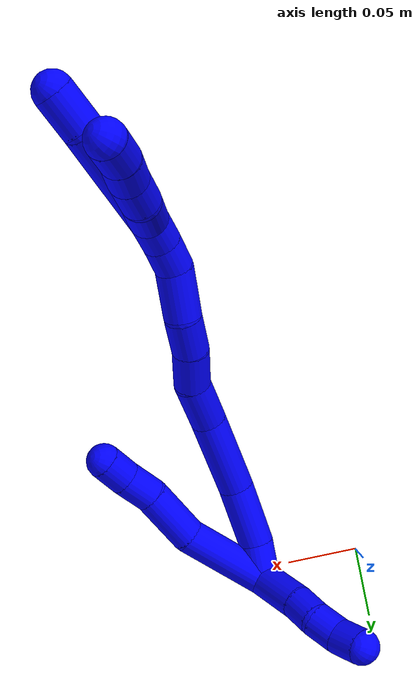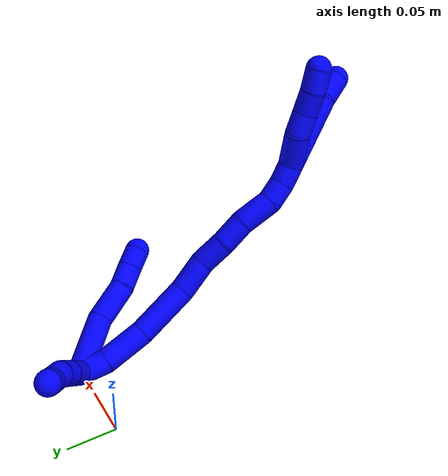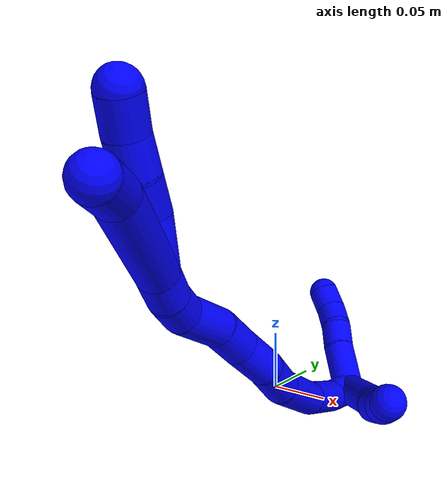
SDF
<sdf version="1.7">
 <world name="default">
  <model name="1">
   <static>0</static>
   <link name="1">
    <collision name="collision-cylinder-e_1_2_8">
     <pose>0.016915 -0.00324 0.026896 0.119895 0.558158 0.034395</pose>
     <geometry><cylinder><radius>0.0125</radius><length>0.063875</length></cylinder></geometry>
     <surface>
      <friction><ode><mu>1.16</mu><mu2>1.16</mu2><slip1>0</slip1><slip2>0</slip2></ode></friction>
      <contact><ode><kp>1e+06</kp><kd>1</kd><max_vel>0</max_vel><min_depth>0.001</min_depth></ode></contact>
     </surface>
    </collision>
    <visual name="visual-cylinder-e_1_2_8">
     <pose>0.016915 -0.00324 0.026896 0.119895 0.558158 0.034395</pose>
     <geometry><cylinder><radius>0.0125</radius><length>0.063875</length></cylinder></geometry>
     <material><ambient>0 0 1 1</ambient></material>
    </visual>
    <collision name="collision-cylinder-e_2_8_9">
     <pose>0.04187 -0.014619 0.0712 0.437349 0.396264 0.089173</pose>
     <geometry><cylinder><radius>0.0125</radius><length>0.041661</length></cylinder></geometry>
     <surface>
      <friction><ode><mu>1.16</mu><mu2>1.16</mu2><slip1>0</slip1><slip2>0</slip2></ode></friction>
      <contact><ode><kp>1e+06</kp><kd>1</kd><max_vel>0</max_vel><min_depth>0.001</min_depth></ode></contact>
     </surface>
    </collision>
    <visual name="visual-cylinder-e_2_8_9">
     <pose>0.04187 -0.014619 0.0712 0.437349 0.396264 0.089173</pose>
     <geometry><cylinder><radius>0.0125</radius><length>0.041661</length></cylinder></geometry>
     <material><ambient>0 0 1 1</ambient></material>
    </visual>
    <collision name="collision-cylinder-e_3_9_10">
     <pose>0.054514 -0.02498 0.09927 0.20541 0.399932 0.041772</pose>
     <geometry><cylinder><radius>0.0125</radius><length>0.023651</length></cylinder></geometry>
     <surface>
      <friction><ode><mu>1.16</mu><mu2>1.16</mu2><slip1>0</slip1><slip2>0</slip2></ode></friction>
      <contact><ode><kp>1e+06</kp><kd>1</kd><max_vel>0</max_vel><min_depth>0.001</min_depth></ode></contact>
     </surface>
    </collision>
    <visual name="visual-cylinder-e_3_9_10">
     <pose>0.054514 -0.02498 0.09927 0.20541 0.399932 0.041772</pose>
     <geometry><cylinder><radius>0.0125</radius><length>0.023651</length></cylinder></geometry>
     <material><ambient>0 0 1 1</ambient></material>
    </visual>
    <collision name="collision-cylinder-e_4_10_6">
     <pose>0.061754 -0.03001 0.119601 0.282709 0.256059 0.036634</pose>
     <geometry><cylinder><radius>0.0125</radius><length>0.020813</length></cylinder></geometry>
     <surface>
      <friction><ode><mu>1.16</mu><mu2>1.16</mu2><slip1>0</slip1><slip2>0</slip2></ode></friction>
      <contact><ode><kp>1e+06</kp><kd>1</kd><max_vel>0</max_vel><min_depth>0.001</min_depth></ode></contact>
     </surface>
    </collision>
    <visual name="visual-cylinder-e_4_10_6">
     <pose>0.061754 -0.03001 0.119601 0.282709 0.256059 0.036634</pose>
     <geometry><cylinder><radius>0.0125</radius><length>0.020813</length></cylinder></geometry>
     <material><ambient>0 0 1 1</ambient></material>
    </visual>
    <collision name="collision-cylinder-e_1_2_11">
     <pose>-0.019483 -0.000377 -5.5e-05 1.71639 -1.55122 -1.69699</pose>
     <geometry><cylinder><radius>0.0125</radius><length>0.038974</length></cylinder></geometry>
     <surface>
      <friction><ode><mu>1.16</mu><mu2>1.16</mu2><slip1>0</slip1><slip2>0</slip2></ode></friction>
      <contact><ode><kp>1e+06</kp><kd>1</kd><max_vel>0</max_vel><min_depth>0.001</min_depth></ode></contact>
     </surface>
    </collision>
    <visual name="visual-cylinder-e_1_2_11">
     <pose>-0.019483 -0.000377 -5.5e-05 1.71639 -1.55122 -1.69699</pose>
     <geometry><cylinder><radius>0.0125</radius><length>0.038974</length></cylinder></geometry>
     <material><ambient>0 0 1 1</ambient></material>
    </visual>
    <collision name="collision-cylinder-e_2_11_12">
     <pose>-0.049289 0.000231 -0.000324 -1.78341 -1.4734 1.68722</pose>
     <geometry><cylinder><radius>0.0125</radius><length>0.020743</length></cylinder></geometry>
     <surface>
      <friction><ode><mu>1.16</mu><mu2>1.16</mu2><slip1>0</slip1><slip2>0</slip2></ode></friction>
      <contact><ode><kp>1e+06</kp><kd>1</kd><max_vel>0</max_vel><min_depth>0.001</min_depth></ode></contact>
     </surface>
    </collision>
    <visual name="visual-cylinder-e_2_11_12">
     <pose>-0.049289 0.000231 -0.000324 -1.78341 -1.4734 1.68722</pose>
     <geometry><cylinder><radius>0.0125</radius><length>0.020743</length></cylinder></geometry>
     <material><ambient>0 0 1 1</ambient></material>
    </visual>
    <collision name="collision-cylinder-e_3_12_13">
     <pose>-0.069262 0.001903 -0.003473 -2.91196 -1.2679 2.8304</pose>
     <geometry><cylinder><radius>0.0125</radius><length>0.02022</length></cylinder></geometry>
     <surface>
      <friction><ode><mu>1.16</mu><mu2>1.16</mu2><slip1>0</slip1><slip2>0</slip2></ode></friction>
      <contact><ode><kp>1e+06</kp><kd>1</kd><max_vel>0</max_vel><min_depth>0.001</min_depth></ode></contact>
     </surface>
    </collision>
    <visual name="visual-cylinder-e_3_12_13">
     <pose>-0.069262 0.001903 -0.003473 -2.91196 -1.2679 2.8304</pose>
     <geometry><cylinder><radius>0.0125</radius><length>0.02022</length></cylinder></geometry>
     <material><ambient>0 0 1 1</ambient></material>
    </visual>
    <collision name="collision-cylinder-e_4_13_5">
     <pose>-0.088801 0.001081 -0.007152 2.02788 -1.40233 -1.87081</pose>
     <geometry><cylinder><radius>0.0125</radius><length>0.020062</length></cylinder></geometry>
     <surface>
      <friction><ode><mu>1.16</mu><mu2>1.16</mu2><slip1>0</slip1><slip2>0</slip2></ode></friction>
      <contact><ode><kp>1e+06</kp><kd>1</kd><max_vel>0</max_vel><min_depth>0.001</min_depth></ode></contact>
     </surface>
    </collision>
    <visual name="visual-cylinder-e_4_13_5">
     <pose>-0.088801 0.001081 -0.007152 2.02788 -1.40233 -1.87081</pose>
     <geometry><cylinder><radius>0.0125</radius><length>0.020062</length></cylinder></geometry>
     <material><ambient>0 0 1 1</ambient></material>
    </visual>
    <collision name="collision-cylinder-e_1_2_14">
     <pose>0.005426 -0.01093 0.006213 1.05393 0.407428 0.239247</pose>
     <geometry><cylinder><radius>0.0125</radius><length>0.027386</length></cylinder></geometry>
     <surface>
      <friction><ode><mu>1.16</mu><mu2>1.16</mu2><slip1>0</slip1><slip2>0</slip2></ode></friction>
      <contact><ode><kp>1e+06</kp><kd>1</kd><max_vel>0</max_vel><min_depth>0.001</min_depth></ode></contact>
     </surface>
    </collision>
    <visual name="visual-cylinder-e_1_2_14">
     <pose>0.005426 -0.01093 0.006213 1.05393 0.407428 0.239247</pose>
     <geometry><cylinder><radius>0.0125</radius><length>0.027386</length></cylinder></geometry>
     <material><ambient>0 0 1 1</ambient></material>
    </visual>
    <collision name="collision-cylinder-e_2_14_15">
     <pose>0.017499 -0.037712 0.027854 0.798954 0.291907 0.12396</pose>
     <geometry><cylinder><radius>0.0125</radius><length>0.046197</length></cylinder></geometry>
     <surface>
      <friction><ode><mu>1.16</mu><mu2>1.16</mu2><slip1>0</slip1><slip2>0</slip2></ode></friction>
      <contact><ode><kp>1e+06</kp><kd>1</kd><max_vel>0</max_vel><min_depth>0.001</min_depth></ode></contact>
     </surface>
    </collision>
    <visual name="visual-cylinder-e_2_14_15">
     <pose>0.017499 -0.037712 0.027854 0.798954 0.291907 0.12396</pose>
     <geometry><cylinder><radius>0.0125</radius><length>0.046197</length></cylinder></geometry>
     <material><ambient>0 0 1 1</ambient></material>
    </visual>
    <collision name="collision-cylinder-e_3_15_16">
     <pose>0.028324 -0.071751 0.065787 0.679684 0.143417 0.050782</pose>
     <geometry><cylinder><radius>0.0125</radius><length>0.058468</length></cylinder></geometry>
     <surface>
      <friction><ode><mu>1.16</mu><mu2>1.16</mu2><slip1>0</slip1><slip2>0</slip2></ode></friction>
      <contact><ode><kp>1e+06</kp><kd>1</kd><max_vel>0</max_vel><min_depth>0.001</min_depth></ode></contact>
     </surface>
    </collision>
    <visual name="visual-cylinder-e_3_15_16">
     <pose>0.028324 -0.071751 0.065787 0.679684 0.143417 0.050782</pose>
     <geometry><cylinder><radius>0.0125</radius><length>0.058468</length></cylinder></geometry>
     <material><ambient>0 0 1 1</ambient></material>
    </visual>
    <collision name="collision-cylinder-e_4_16_17">
     <pose>0.031662 -0.099452 0.102928 0.576388 -0.048104 -0.014263</pose>
     <geometry><cylinder><radius>0.0125</radius><length>0.034956</length></cylinder></geometry>
     <surface>
      <friction><ode><mu>1.16</mu><mu2>1.16</mu2><slip1>0</slip1><slip2>0</slip2></ode></friction>
      <contact><ode><kp>1e+06</kp><kd>1</kd><max_vel>0</max_vel><min_depth>0.001</min_depth></ode></contact>
     </surface>
    </collision>
    <visual name="visual-cylinder-e_4_16_17">
     <pose>0.031662 -0.099452 0.102928 0.576388 -0.048104 -0.014263</pose>
     <geometry><cylinder><radius>0.0125</radius><length>0.034956</length></cylinder></geometry>
     <material><ambient>0 0 1 1</ambient></material>
    </visual>
    <collision name="collision-cylinder-e_5_17_18">
     <pose>0.027823 -0.119438 0.127446 0.814399 -0.205337 -0.088817</pose>
     <geometry><cylinder><radius>0.0125</radius><length>0.029413</length></cylinder></geometry>
     <surface>
      <friction><ode><mu>1.16</mu><mu2>1.16</mu2><slip1>0</slip1><slip2>0</slip2></ode></friction>
      <contact><ode><kp>1e+06</kp><kd>1</kd><max_vel>0</max_vel><min_depth>0.001</min_depth></ode></contact>
     </surface>
    </collision>
    <visual name="visual-cylinder-e_5_17_18">
     <pose>0.027823 -0.119438 0.127446 0.814399 -0.205337 -0.088817</pose>
     <geometry><cylinder><radius>0.0125</radius><length>0.029413</length></cylinder></geometry>
     <material><ambient>0 0 1 1</ambient></material>
    </visual>
    <collision name="collision-cylinder-e_6_18_19">
     <pose>0.023335 -0.138793 0.147784 0.704218 -0.108146 -0.039768</pose>
     <geometry><cylinder><radius>0.0125</radius><length>0.027602</length></cylinder></geometry>
     <surface>
      <friction><ode><mu>1.16</mu><mu2>1.16</mu2><slip1>0</slip1><slip2>0</slip2></ode></friction>
      <contact><ode><kp>1e+06</kp><kd>1</kd><max_vel>0</max_vel><min_depth>0.001</min_depth></ode></contact>
     </surface>
    </collision>
    <visual name="visual-cylinder-e_6_18_19">
     <pose>0.023335 -0.138793 0.147784 0.704218 -0.108146 -0.039768</pose>
     <geometry><cylinder><radius>0.0125</radius><length>0.027602</length></cylinder></geometry>
     <material><ambient>0 0 1 1</ambient></material>
    </visual>
    <collision name="collision-cylinder-e_7_19_20">
     <pose>0.022909 -0.160578 0.169396 0.857857 0.062281 0.02849</pose>
     <geometry><cylinder><radius>0.0125</radius><length>0.03418</length></cylinder></geometry>
     <surface>
      <friction><ode><mu>1.16</mu><mu2>1.16</mu2><slip1>0</slip1><slip2>0</slip2></ode></friction>
      <contact><ode><kp>1e+06</kp><kd>1</kd><max_vel>0</max_vel><min_depth>0.001</min_depth></ode></contact>
     </surface>
    </collision>
    <visual name="visual-cylinder-e_7_19_20">
     <pose>0.022909 -0.160578 0.169396 0.857857 0.062281 0.02849</pose>
     <geometry><cylinder><radius>0.0125</radius><length>0.03418</length></cylinder></geometry>
     <material><ambient>0 0 1 1</ambient></material>
    </visual>
    <collision name="collision-cylinder-e_8_20_21">
     <pose>0.023774 -0.178789 0.189637 0.528828 -0.018847 -0.005103</pose>
     <geometry><cylinder><radius>0.0125</radius><length>0.021047</length></cylinder></geometry>
     <surface>
      <friction><ode><mu>1.16</mu><mu2>1.16</mu2><slip1>0</slip1><slip2>0</slip2></ode></friction>
      <contact><ode><kp>1e+06</kp><kd>1</kd><max_vel>0</max_vel><min_depth>0.001</min_depth></ode></contact>
     </surface>
    </collision>
    <visual name="visual-cylinder-e_8_20_21">
     <pose>0.023774 -0.178789 0.189637 0.528828 -0.018847 -0.005103</pose>
     <geometry><cylinder><radius>0.0125</radius><length>0.021047</length></cylinder></geometry>
     <material><ambient>0 0 1 1</ambient></material>
    </visual>
    <collision name="collision-cylinder-e_9_21_1">
     <pose>0.021765 -0.188232 0.208063 0.416681 -0.175404 -0.037173</pose>
     <geometry><cylinder><radius>0.0125</radius><length>0.020752</length></cylinder></geometry>
     <surface>
      <friction><ode><mu>1.16</mu><mu2>1.16</mu2><slip1>0</slip1><slip2>0</slip2></ode></friction>
      <contact><ode><kp>1e+06</kp><kd>1</kd><max_vel>0</max_vel><min_depth>0.001</min_depth></ode></contact>
     </surface>
    </collision>
    <visual name="visual-cylinder-e_9_21_1">
     <pose>0.021765 -0.188232 0.208063 0.416681 -0.175404 -0.037173</pose>
     <geometry><cylinder><radius>0.0125</radius><length>0.020752</length></cylinder></geometry>
     <material><ambient>0 0 1 1</ambient></material>
    </visual>
    <collision name="collision-cylinder-e_1_1_22">
     <pose>0.020698 -0.20636 0.251456 0.389911 0.020174 0.003984</pose>
     <geometry><cylinder><radius>0.0125</radius><length>0.073642</length></cylinder></geometry>
     <surface>
      <friction><ode><mu>1.16</mu><mu2>1.16</mu2><slip1>0</slip1><slip2>0</slip2></ode></friction>
      <contact><ode><kp>1e+06</kp><kd>1</kd><max_vel>0</max_vel><min_depth>0.001</min_depth></ode></contact>
     </surface>
    </collision>
    <visual name="visual-cylinder-e_1_1_22">
     <pose>0.020698 -0.20636 0.251456 0.389911 0.020174 0.003984</pose>
     <geometry><cylinder><radius>0.0125</radius><length>0.073642</length></cylinder></geometry>
     <material><ambient>0 0 1 1</ambient></material>
    </visual>
    <collision name="collision-cylinder-e_2_22_4">
     <pose>0.025464 -0.225851 0.296788 0.453427 0.310262 0.07212</pose>
     <geometry><cylinder><radius>0.0125</radius><length>0.026358</length></cylinder></geometry>
     <surface>
      <friction><ode><mu>1.16</mu><mu2>1.16</mu2><slip1>0</slip1><slip2>0</slip2></ode></friction>
      <contact><ode><kp>1e+06</kp><kd>1</kd><max_vel>0</max_vel><min_depth>0.001</min_depth></ode></contact>
     </surface>
    </collision>
    <visual name="visual-cylinder-e_2_22_4">
     <pose>0.025464 -0.225851 0.296788 0.453427 0.310262 0.07212</pose>
     <geometry><cylinder><radius>0.0125</radius><length>0.026358</length></cylinder></geometry>
     <material><ambient>0 0 1 1</ambient></material>
    </visual>
    <collision name="collision-cylinder-e_1_1_23">
     <pose>0.009961 -0.19553 0.230178 0.242716 -0.6496 -0.082086</pose>
     <geometry><cylinder><radius>0.0125</radius><length>0.033046</length></cylinder></geometry>
     <surface>
      <friction><ode><mu>1.16</mu><mu2>1.16</mu2><slip1>0</slip1><slip2>0</slip2></ode></friction>
      <contact><ode><kp>1e+06</kp><kd>1</kd><max_vel>0</max_vel><min_depth>0.001</min_depth></ode></contact>
     </surface>
    </collision>
    <visual name="visual-cylinder-e_1_1_23">
     <pose>0.009961 -0.19553 0.230178 0.242716 -0.6496 -0.082086</pose>
     <geometry><cylinder><radius>0.0125</radius><length>0.033046</length></cylinder></geometry>
     <material><ambient>0 0 1 1</ambient></material>
    </visual>
    <collision name="collision-cylinder-e_2_23_24">
     <pose>-0.004071 -0.202275 0.252968 0.343452 -0.36266 -0.063575</pose>
     <geometry><cylinder><radius>0.0125</radius><length>0.022759</length></cylinder></geometry>
     <surface>
      <friction><ode><mu>1.16</mu><mu2>1.16</mu2><slip1>0</slip1><slip2>0</slip2></ode></friction>
      <contact><ode><kp>1e+06</kp><kd>1</kd><max_vel>0</max_vel><min_depth>0.001</min_depth></ode></contact>
     </surface>
    </collision>
    <visual name="visual-cylinder-e_2_23_24">
     <pose>-0.004071 -0.202275 0.252968 0.343452 -0.36266 -0.063575</pose>
     <geometry><cylinder><radius>0.0125</radius><length>0.022759</length></cylinder></geometry>
     <material><ambient>0 0 1 1</ambient></material>
    </visual>
    <collision name="collision-cylinder-e_3_24_25">
     <pose>-0.013294 -0.209243 0.272007 0.35911 -0.493805 -0.091434</pose>
     <geometry><cylinder><radius>0.0125</radius><length>0.021885</length></cylinder></geometry>
     <surface>
      <friction><ode><mu>1.16</mu><mu2>1.16</mu2><slip1>0</slip1><slip2>0</slip2></ode></friction>
      <contact><ode><kp>1e+06</kp><kd>1</kd><max_vel>0</max_vel><min_depth>0.001</min_depth></ode></contact>
     </surface>
    </collision>
    <visual name="visual-cylinder-e_3_24_25">
     <pose>-0.013294 -0.209243 0.272007 0.35911 -0.493805 -0.091434</pose>
     <geometry><cylinder><radius>0.0125</radius><length>0.021885</length></cylinder></geometry>
     <material><ambient>0 0 1 1</ambient></material>
    </visual>
    <collision name="collision-cylinder-e_4_25_3">
     <pose>-0.022998 -0.215062 0.290933 0.240755 -0.416932 -0.051165</pose>
     <geometry><cylinder><radius>0.0125</radius><length>0.02231</length></cylinder></geometry>
     <surface>
      <friction><ode><mu>1.16</mu><mu2>1.16</mu2><slip1>0</slip1><slip2>0</slip2></ode></friction>
      <contact><ode><kp>1e+06</kp><kd>1</kd><max_vel>0</max_vel><min_depth>0.001</min_depth></ode></contact>
     </surface>
    </collision>
    <visual name="visual-cylinder-e_4_25_3">
     <pose>-0.022998 -0.215062 0.290933 0.240755 -0.416932 -0.051165</pose>
     <geometry><cylinder><radius>0.0125</radius><length>0.02231</length></cylinder></geometry>
     <material><ambient>0 0 1 1</ambient></material>
    </visual>
    <collision name="collision-sphere-3">
     <pose>-0.027515 -0.217493 0.300838 0 -0 0</pose>
     <geometry><sphere><radius>0.0125</radius></sphere></geometry>
     <surface>
      <friction><ode><mu>1.16</mu><mu2>1.16</mu2><slip1>0</slip1><slip2>0</slip2></ode></friction>
      <contact><ode><kp>1e+06</kp><kd>1</kd><max_vel>0</max_vel><min_depth>0.001</min_depth></ode></contact>
     </surface>
    </collision>
    <visual name="visual-sphere-3">
     <pose>-0.027515 -0.217493 0.300838 0 -0 0</pose>
     <geometry><sphere><radius>0.0125</radius></sphere></geometry>
     <material><ambient>0 0 1 1</ambient></material>
    </visual>
    <collision name="collision-sphere-25">
     <pose>-0.018481 -0.21263 0.281027 0 -0 0</pose>
     <geometry><sphere><radius>0.0125</radius></sphere></geometry>
     <surface>
      <friction><ode><mu>1.16</mu><mu2>1.16</mu2><slip1>0</slip1><slip2>0</slip2></ode></friction>
      <contact><ode><kp>1e+06</kp><kd>1</kd><max_vel>0</max_vel><min_depth>0.001</min_depth></ode></contact>
     </surface>
    </collision>
    <visual name="visual-sphere-25">
     <pose>-0.018481 -0.21263 0.281027 0 -0 0</pose>
     <geometry><sphere><radius>0.0125</radius></sphere></geometry>
     <material><ambient>0 0 1 1</ambient></material>
    </visual>
    <collision name="collision-sphere-24">
     <pose>-0.008108 -0.205857 0.262986 0 -0 0</pose>
     <geometry><sphere><radius>0.0125</radius></sphere></geometry>
     <surface>
      <friction><ode><mu>1.16</mu><mu2>1.16</mu2><slip1>0</slip1><slip2>0</slip2></ode></friction>
      <contact><ode><kp>1e+06</kp><kd>1</kd><max_vel>0</max_vel><min_depth>0.001</min_depth></ode></contact>
     </surface>
    </collision>
    <visual name="visual-sphere-24">
     <pose>-0.008108 -0.205857 0.262986 0 -0 0</pose>
     <geometry><sphere><radius>0.0125</radius></sphere></geometry>
     <material><ambient>0 0 1 1</ambient></material>
    </visual>
    <collision name="collision-sphere-23">
     <pose>-3.4e-05 -0.198692 0.24295 0 -0 0</pose>
     <geometry><sphere><radius>0.0125</radius></sphere></geometry>
     <surface>
      <friction><ode><mu>1.16</mu><mu2>1.16</mu2><slip1>0</slip1><slip2>0</slip2></ode></friction>
      <contact><ode><kp>1e+06</kp><kd>1</kd><max_vel>0</max_vel><min_depth>0.001</min_depth></ode></contact>
     </surface>
    </collision>
    <visual name="visual-sphere-23">
     <pose>-3.4e-05 -0.198692 0.24295 0 -0 0</pose>
     <geometry><sphere><radius>0.0125</radius></sphere></geometry>
     <material><ambient>0 0 1 1</ambient></material>
    </visual>
    <collision name="collision-sphere-4">
     <pose>0.029488 -0.231348 0.30807 0 -0 0</pose>
     <geometry><sphere><radius>0.0125</radius></sphere></geometry>
     <surface>
      <friction><ode><mu>1.16</mu><mu2>1.16</mu2><slip1>0</slip1><slip2>0</slip2></ode></friction>
      <contact><ode><kp>1e+06</kp><kd>1</kd><max_vel>0</max_vel><min_depth>0.001</min_depth></ode></contact>
     </surface>
    </collision>
    <visual name="visual-sphere-4">
     <pose>0.029488 -0.231348 0.30807 0 -0 0</pose>
     <geometry><sphere><radius>0.0125</radius></sphere></geometry>
     <material><ambient>0 0 1 1</ambient></material>
    </visual>
    <collision name="collision-sphere-22">
     <pose>0.02144 -0.220353 0.285507 0 -0 0</pose>
     <geometry><sphere><radius>0.0125</radius></sphere></geometry>
     <surface>
      <friction><ode><mu>1.16</mu><mu2>1.16</mu2><slip1>0</slip1><slip2>0</slip2></ode></friction>
      <contact><ode><kp>1e+06</kp><kd>1</kd><max_vel>0</max_vel><min_depth>0.001</min_depth></ode></contact>
     </surface>
    </collision>
    <visual name="visual-sphere-22">
     <pose>0.02144 -0.220353 0.285507 0 -0 0</pose>
     <geometry><sphere><radius>0.0125</radius></sphere></geometry>
     <material><ambient>0 0 1 1</ambient></material>
    </visual>
    <collision name="collision-sphere-1">
     <pose>0.019955 -0.192367 0.217406 0 -0 0</pose>
     <geometry><sphere><radius>0.0125</radius></sphere></geometry>
     <surface>
      <friction><ode><mu>1.16</mu><mu2>1.16</mu2><slip1>0</slip1><slip2>0</slip2></ode></friction>
      <contact><ode><kp>1e+06</kp><kd>1</kd><max_vel>0</max_vel><min_depth>0.001</min_depth></ode></contact>
     </surface>
    </collision>
    <visual name="visual-sphere-1">
     <pose>0.019955 -0.192367 0.217406 0 -0 0</pose>
     <geometry><sphere><radius>0.0125</radius></sphere></geometry>
     <material><ambient>0 0 1 1</ambient></material>
    </visual>
    <collision name="collision-sphere-21">
     <pose>0.023576 -0.184097 0.198721 0 -0 0</pose>
     <geometry><sphere><radius>0.0125</radius></sphere></geometry>
     <surface>
      <friction><ode><mu>1.16</mu><mu2>1.16</mu2><slip1>0</slip1><slip2>0</slip2></ode></friction>
      <contact><ode><kp>1e+06</kp><kd>1</kd><max_vel>0</max_vel><min_depth>0.001</min_depth></ode></contact>
     </surface>
    </collision>
    <visual name="visual-sphere-21">
     <pose>0.023576 -0.184097 0.198721 0 -0 0</pose>
     <geometry><sphere><radius>0.0125</radius></sphere></geometry>
     <material><ambient>0 0 1 1</ambient></material>
    </visual>
    <collision name="collision-sphere-11">
     <pose>-0.038967 -0.000755 -0.000111 0 -0 0</pose>
     <geometry><sphere><radius>0.0125</radius></sphere></geometry>
     <surface>
      <friction><ode><mu>1.16</mu><mu2>1.16</mu2><slip1>0</slip1><slip2>0</slip2></ode></friction>
      <contact><ode><kp>1e+06</kp><kd>1</kd><max_vel>0</max_vel><min_depth>0.001</min_depth></ode></contact>
     </surface>
    </collision>
    <visual name="visual-sphere-11">
     <pose>-0.038967 -0.000755 -0.000111 0 -0 0</pose>
     <geometry><sphere><radius>0.0125</radius></sphere></geometry>
     <material><ambient>0 0 1 1</ambient></material>
    </visual>
    <collision name="collision-sphere-6">
     <pose>0.06439 -0.032818 0.129269 0 -0 0</pose>
     <geometry><sphere><radius>0.0125</radius></sphere></geometry>
     <surface>
      <friction><ode><mu>1.16</mu><mu2>1.16</mu2><slip1>0</slip1><slip2>0</slip2></ode></friction>
      <contact><ode><kp>1e+06</kp><kd>1</kd><max_vel>0</max_vel><min_depth>0.001</min_depth></ode></contact>
     </surface>
    </collision>
    <visual name="visual-sphere-6">
     <pose>0.06439 -0.032818 0.129269 0 -0 0</pose>
     <geometry><sphere><radius>0.0125</radius></sphere></geometry>
     <material><ambient>0 0 1 1</ambient></material>
    </visual>
    <collision name="collision-sphere-10">
     <pose>0.059118 -0.027202 0.109934 0 -0 0</pose>
     <geometry><sphere><radius>0.0125</radius></sphere></geometry>
     <surface>
      <friction><ode><mu>1.16</mu><mu2>1.16</mu2><slip1>0</slip1><slip2>0</slip2></ode></friction>
      <contact><ode><kp>1e+06</kp><kd>1</kd><max_vel>0</max_vel><min_depth>0.001</min_depth></ode></contact>
     </surface>
    </collision>
    <visual name="visual-sphere-10">
     <pose>0.059118 -0.027202 0.109934 0 -0 0</pose>
     <geometry><sphere><radius>0.0125</radius></sphere></geometry>
     <material><ambient>0 0 1 1</ambient></material>
    </visual>
    <collision name="collision-sphere-9">
     <pose>0.04991 -0.022758 0.088607 0 -0 0</pose>
     <geometry><sphere><radius>0.0125</radius></sphere></geometry>
     <surface>
      <friction><ode><mu>1.16</mu><mu2>1.16</mu2><slip1>0</slip1><slip2>0</slip2></ode></friction>
      <contact><ode><kp>1e+06</kp><kd>1</kd><max_vel>0</max_vel><min_depth>0.001</min_depth></ode></contact>
     </surface>
    </collision>
    <visual name="visual-sphere-9">
     <pose>0.04991 -0.022758 0.088607 0 -0 0</pose>
     <geometry><sphere><radius>0.0125</radius></sphere></geometry>
     <material><ambient>0 0 1 1</ambient></material>
    </visual>
    <collision name="collision-sphere-2">
     <geometry><sphere><radius>0.0125</radius></sphere></geometry>
     <surface>
      <friction><ode><mu>1.16</mu><mu2>1.16</mu2><slip1>0</slip1><slip2>0</slip2></ode></friction>
      <contact><ode><kp>1e+06</kp><kd>1</kd><max_vel>0</max_vel><min_depth>0.001</min_depth></ode></contact>
     </surface>
    </collision>
    <visual name="visual-sphere-2">
     <geometry><sphere><radius>0.0125</radius></sphere></geometry>
     <material><ambient>0 0 1 1</ambient></material>
    </visual>
    <collision name="collision-sphere-19">
     <pose>0.021845 -0.147676 0.15824 0 -0 0</pose>
     <geometry><sphere><radius>0.0125</radius></sphere></geometry>
     <surface>
      <friction><ode><mu>1.16</mu><mu2>1.16</mu2><slip1>0</slip1><slip2>0</slip2></ode></friction>
      <contact><ode><kp>1e+06</kp><kd>1</kd><max_vel>0</max_vel><min_depth>0.001</min_depth></ode></contact>
     </surface>
    </collision>
    <visual name="visual-sphere-19">
     <pose>0.021845 -0.147676 0.15824 0 -0 0</pose>
     <geometry><sphere><radius>0.0125</radius></sphere></geometry>
     <material><ambient>0 0 1 1</ambient></material>
    </visual>
    <collision name="collision-sphere-8">
     <pose>0.03383 -0.00648 0.053792 0 -0 0</pose>
     <geometry><sphere><radius>0.0125</radius></sphere></geometry>
     <surface>
      <friction><ode><mu>1.16</mu><mu2>1.16</mu2><slip1>0</slip1><slip2>0</slip2></ode></friction>
      <contact><ode><kp>1e+06</kp><kd>1</kd><max_vel>0</max_vel><min_depth>0.001</min_depth></ode></contact>
     </surface>
    </collision>
    <visual name="visual-sphere-8">
     <pose>0.03383 -0.00648 0.053792 0 -0 0</pose>
     <geometry><sphere><radius>0.0125</radius></sphere></geometry>
     <material><ambient>0 0 1 1</ambient></material>
    </visual>
    <collision name="collision-sphere-12">
     <pose>-0.059612 0.001217 -0.000536 0 -0 0</pose>
     <geometry><sphere><radius>0.0125</radius></sphere></geometry>
     <surface>
      <friction><ode><mu>1.16</mu><mu2>1.16</mu2><slip1>0</slip1><slip2>0</slip2></ode></friction>
      <contact><ode><kp>1e+06</kp><kd>1</kd><max_vel>0</max_vel><min_depth>0.001</min_depth></ode></contact>
     </surface>
    </collision>
    <visual name="visual-sphere-12">
     <pose>-0.059612 0.001217 -0.000536 0 -0 0</pose>
     <geometry><sphere><radius>0.0125</radius></sphere></geometry>
     <material><ambient>0 0 1 1</ambient></material>
    </visual>
    <collision name="collision-sphere-13">
     <pose>-0.078912 0.00259 -0.00641 0 -0 0</pose>
     <geometry><sphere><radius>0.0125</radius></sphere></geometry>
     <surface>
      <friction><ode><mu>1.16</mu><mu2>1.16</mu2><slip1>0</slip1><slip2>0</slip2></ode></friction>
      <contact><ode><kp>1e+06</kp><kd>1</kd><max_vel>0</max_vel><min_depth>0.001</min_depth></ode></contact>
     </surface>
    </collision>
    <visual name="visual-sphere-13">
     <pose>-0.078912 0.00259 -0.00641 0 -0 0</pose>
     <geometry><sphere><radius>0.0125</radius></sphere></geometry>
     <material><ambient>0 0 1 1</ambient></material>
    </visual>
    <collision name="collision-sphere-5">
     <pose>-0.09869 -0.000429 -0.007894 0 -0 0</pose>
     <geometry><sphere><radius>0.0125</radius></sphere></geometry>
     <surface>
      <friction><ode><mu>1.16</mu><mu2>1.16</mu2><slip1>0</slip1><slip2>0</slip2></ode></friction>
      <contact><ode><kp>1e+06</kp><kd>1</kd><max_vel>0</max_vel><min_depth>0.001</min_depth></ode></contact>
     </surface>
    </collision>
    <visual name="visual-sphere-5">
     <pose>-0.09869 -0.000429 -0.007894 0 -0 0</pose>
     <geometry><sphere><radius>0.0125</radius></sphere></geometry>
     <material><ambient>0 0 1 1</ambient></material>
    </visual>
    <collision name="collision-sphere-14">
     <pose>0.010852 -0.02186 0.012425 0 -0 0</pose>
     <geometry><sphere><radius>0.0125</radius></sphere></geometry>
     <surface>
      <friction><ode><mu>1.16</mu><mu2>1.16</mu2><slip1>0</slip1><slip2>0</slip2></ode></friction>
      <contact><ode><kp>1e+06</kp><kd>1</kd><max_vel>0</max_vel><min_depth>0.001</min_depth></ode></contact>
     </surface>
    </collision>
    <visual name="visual-sphere-14">
     <pose>0.010852 -0.02186 0.012425 0 -0 0</pose>
     <geometry><sphere><radius>0.0125</radius></sphere></geometry>
     <material><ambient>0 0 1 1</ambient></material>
    </visual>
    <collision name="collision-sphere-15">
     <pose>0.024146 -0.053565 0.043283 0 -0 0</pose>
     <geometry><sphere><radius>0.0125</radius></sphere></geometry>
     <surface>
      <friction><ode><mu>1.16</mu><mu2>1.16</mu2><slip1>0</slip1><slip2>0</slip2></ode></friction>
      <contact><ode><kp>1e+06</kp><kd>1</kd><max_vel>0</max_vel><min_depth>0.001</min_depth></ode></contact>
     </surface>
    </collision>
    <visual name="visual-sphere-15">
     <pose>0.024146 -0.053565 0.043283 0 -0 0</pose>
     <geometry><sphere><radius>0.0125</radius></sphere></geometry>
     <material><ambient>0 0 1 1</ambient></material>
    </visual>
    <collision name="collision-sphere-16">
     <pose>0.032503 -0.089938 0.088291 0 -0 0</pose>
     <geometry><sphere><radius>0.0125</radius></sphere></geometry>
     <surface>
      <friction><ode><mu>1.16</mu><mu2>1.16</mu2><slip1>0</slip1><slip2>0</slip2></ode></friction>
      <contact><ode><kp>1e+06</kp><kd>1</kd><max_vel>0</max_vel><min_depth>0.001</min_depth></ode></contact>
     </surface>
    </collision>
    <visual name="visual-sphere-16">
     <pose>0.032503 -0.089938 0.088291 0 -0 0</pose>
     <geometry><sphere><radius>0.0125</radius></sphere></geometry>
     <material><ambient>0 0 1 1</ambient></material>
    </visual>
    <collision name="collision-sphere-17">
     <pose>0.030822 -0.108967 0.117565 0 -0 0</pose>
     <geometry><sphere><radius>0.0125</radius></sphere></geometry>
     <surface>
      <friction><ode><mu>1.16</mu><mu2>1.16</mu2><slip1>0</slip1><slip2>0</slip2></ode></friction>
      <contact><ode><kp>1e+06</kp><kd>1</kd><max_vel>0</max_vel><min_depth>0.001</min_depth></ode></contact>
     </surface>
    </collision>
    <visual name="visual-sphere-17">
     <pose>0.030822 -0.108967 0.117565 0 -0 0</pose>
     <geometry><sphere><radius>0.0125</radius></sphere></geometry>
     <material><ambient>0 0 1 1</ambient></material>
    </visual>
    <collision name="collision-sphere-18">
     <pose>0.024825 -0.12991 0.137327 0 -0 0</pose>
     <geometry><sphere><radius>0.0125</radius></sphere></geometry>
     <surface>
      <friction><ode><mu>1.16</mu><mu2>1.16</mu2><slip1>0</slip1><slip2>0</slip2></ode></friction>
      <contact><ode><kp>1e+06</kp><kd>1</kd><max_vel>0</max_vel><min_depth>0.001</min_depth></ode></contact>
     </surface>
    </collision>
    <visual name="visual-sphere-18">
     <pose>0.024825 -0.12991 0.137327 0 -0 0</pose>
     <geometry><sphere><radius>0.0125</radius></sphere></geometry>
     <material><ambient>0 0 1 1</ambient></material>
    </visual>
    <collision name="collision-sphere-20">
     <pose>0.023973 -0.17348 0.180552 0 -0 0</pose>
     <geometry><sphere><radius>0.0125</radius></sphere></geometry>
     <surface>
      <friction><ode><mu>1.16</mu><mu2>1.16</mu2><slip1>0</slip1><slip2>0</slip2></ode></friction>
      <contact><ode><kp>1e+06</kp><kd>1</kd><max_vel>0</max_vel><min_depth>0.001</min_depth></ode></contact>
     </surface>
    </collision>
    <visual name="visual-sphere-20">
     <pose>0.023973 -0.17348 0.180552 0 -0 0</pose>
     <geometry><sphere><radius>0.0125</radius></sphere></geometry>
     <material><ambient>0 0 1 1</ambient></material>
    </visual>
    <inertial>
     <pose>0.011974 -0.098384 0.123033 0 -0 0</pose>
     <mass>0.75</mass>
     <inertia>
      <ixx>0.000126</ixx>
      <ixy>0</ixy>
      <ixz>0</ixz>
      <iyy>0.000109</iyy>
      <iyz>0</iyz>
      <izz>8.8e-05</izz>
     </inertia>
    </inertial>
   </link>
   <pose>0.071116 0.005342 0.012295 -0.10778 0.80716 -0.737312</pose>
  </model>
 </world>
</sdf>
